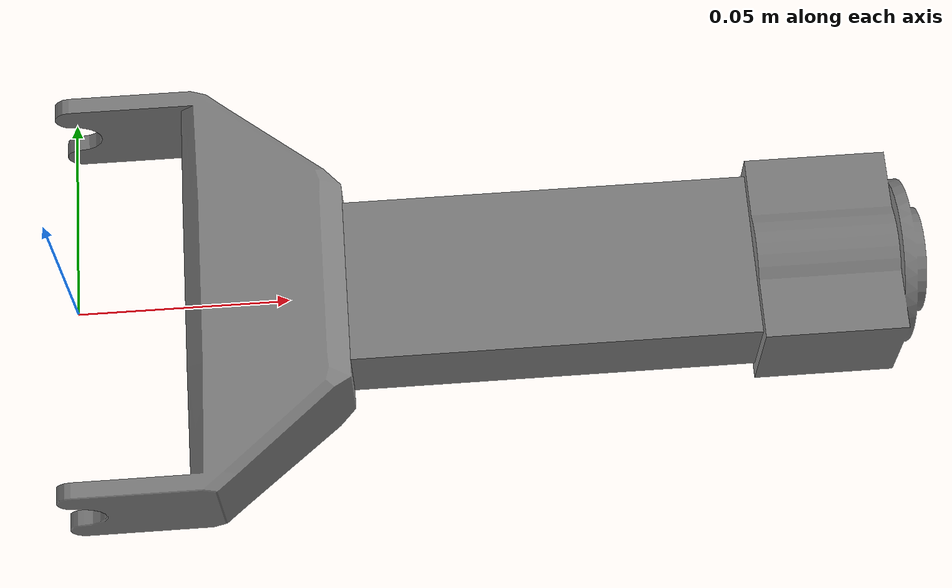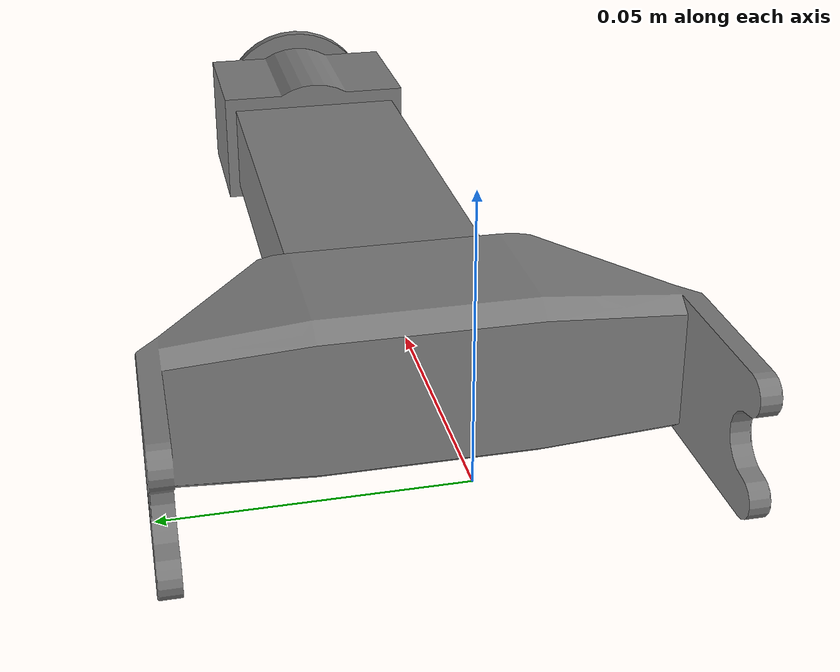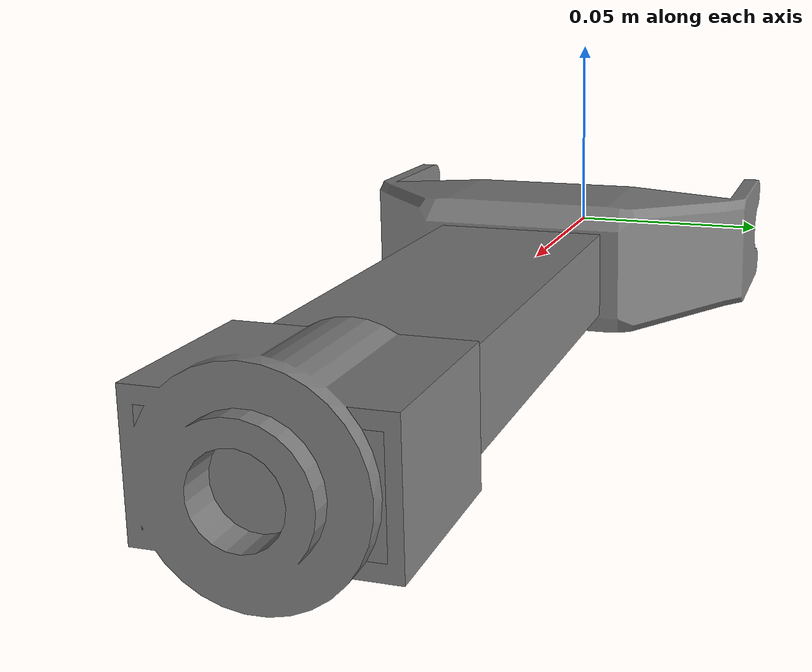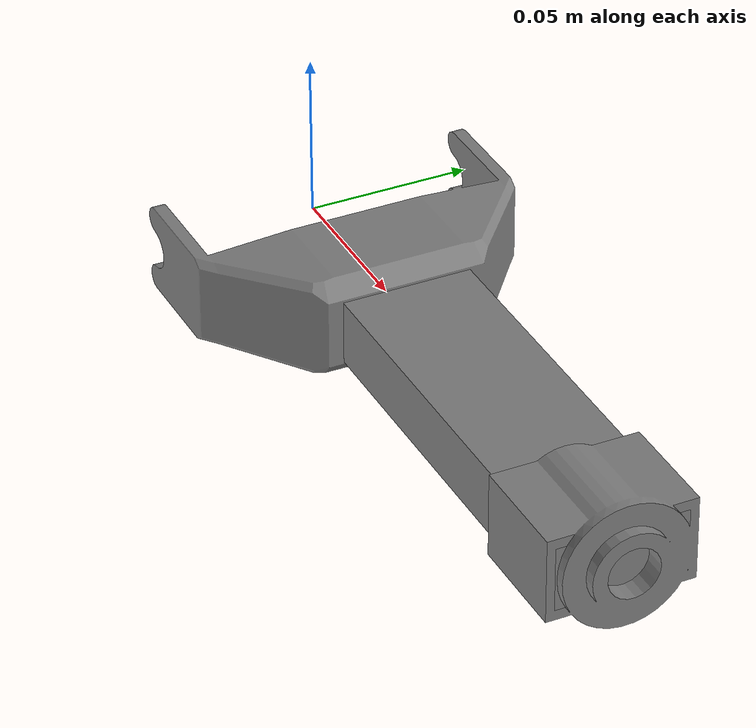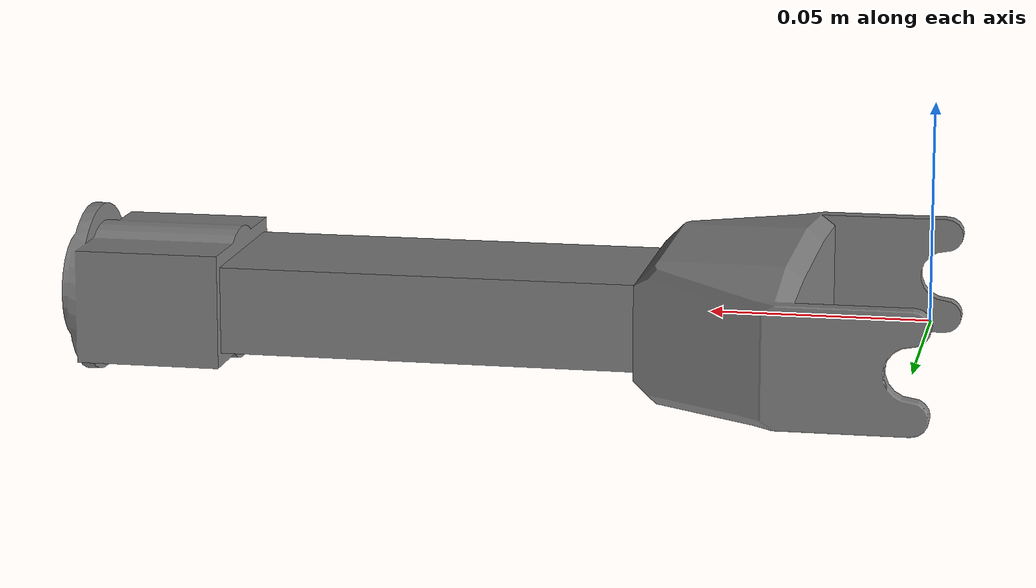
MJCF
<mujoco model="aloha_upper_forearm_with_joint_dynamics">
    <include file="aloha_upper_forearm.xml" />

    <custom>
        <numeric name="elbow\joint\damping\0\range\y" size='2' data='0.0 20.0' />
        <numeric name="elbow\joint\armature\0\range\y" size='2' data='0.0 0.5' />
        <numeric name="elbow\joint\frictionloss\0\range\y" size='2' data='0.0 2.0' />
    </custom>
</mujoco>

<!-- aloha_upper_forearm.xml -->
<mujoco model="aloha_upper_forearm">
    <compiler angle="radian" meshdir="assets" autolimits="true" />

    <asset>
        <mesh file="custom_vx300s_3_upper_forearm_part1.stl" />
        <mesh file="custom_vx300s_3_upper_forearm_part2.stl" />
    </asset>

    <default>
        <default class="vx300s">
            <joint axis="0 1 0" actuatorfrcrange="-35 35" actuatorgravcomp="true" />
            <!-- group 4 means not a tracking site -->
            <site group="4" />
            <default class="elbow">
                <joint range="-1.76278 1.6057" armature="0.383" frictionloss="1.15" damping="18.49"
                    actuatorfrcrange="-59 59" />
                <position ctrlrange="-1.76278 1.6057" kp="227" forcerange="-59 59" />
            </default>
            <default class="visual">
                <geom type="mesh" mass="0" group="2" contype="0" conaffinity="0" />
            </default>
            <default class="collision">
                <geom group="3" type="mesh" condim="6" friction="1 5e-3 5e-4" solref=".01 1" />
            </default>
        </default>
    </default>

    <worldbody>
        <body name="upper_forearm_link" childclass="vx300s">
            <geom pos="0.045 0 0.0005 " rgba='1 0 0 1' type="box"
                size="0.017 0.05 0.015"
                class="collision" mass="0" name="upper_forearm_link_connector" />
            <joint name="elbow" class="elbow" />
            <geom class="visual" mesh="custom_vx300s_3_upper_forearm_part1" mass="0.05" />
            <geom type="box" size="0.064685 0.02 0.01" pos="0.128684 0 0" density="100"
                rgba="0.2 0.8 0.4 1" name="upper_forearm_extension" class="collision" />
            <geom type="box" size="0.064685 0.02 0.01" pos="0.128684 0 0" density="100"
                name="upper_forearm_extension_visual" class="visual" />
            <geom class="visual" mesh="custom_vx300s_3_upper_forearm_part2"
                name="upper_forearm_connector" mass="0.05" pos="0.0 0 0.0" />
            <site name="lower_forearm_mount" pos="0.2 0 0" euler="0 0 0" />
        </body>
    </worldbody>

    <custom>
        <numeric name="upper_forearm_extension\geom\size\0\range\x+y" size='2'
            data='-0.03 0.20' />
        <text name="upper_forearm_extension_size"
            data="upper_forearm_extension\geom\size\0\range\x+y;upper_forearm_extension_visual\geom\size\0\range\x+y" />

        <text name="shift_pos_with_extension_upper_forearm"
            data="upper_forearm_extension\geom\size\0\range\x+y;upper_forearm_extension\geom\pos\0\range\x+y;upper_forearm_extension_visual\geom\pos\0\range\x+y;upper_forearm_connector\geom\pos\0\range\x+y*2;lower_forearm_mount\site\pos\0\range\x+y*2"
        />

        <tuple name="actuators">
            <element objtype="joint" objname="elbow" />
        </tuple>
    </custom>
</mujoco>
